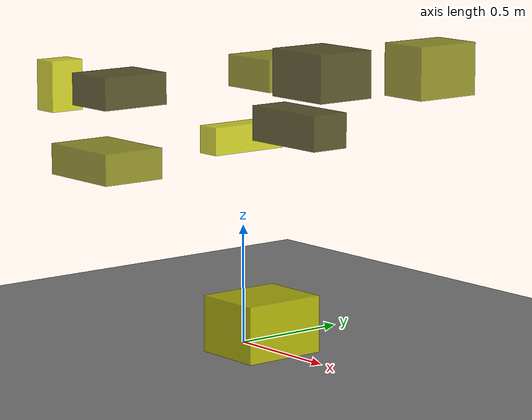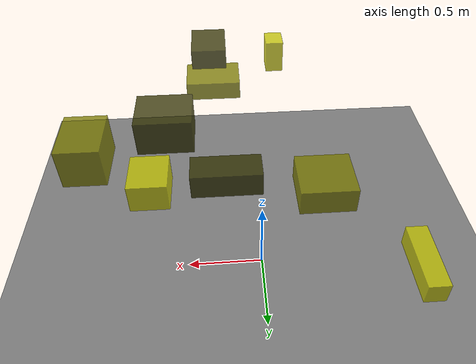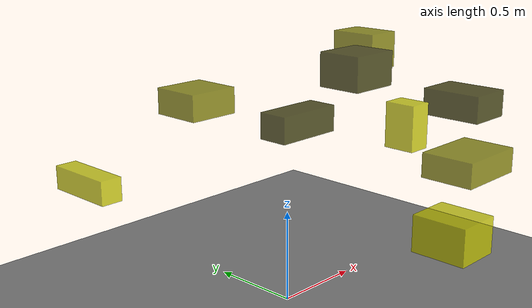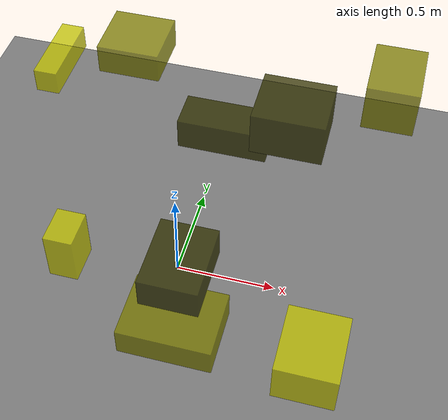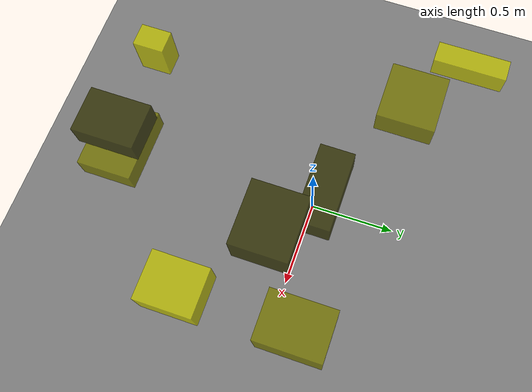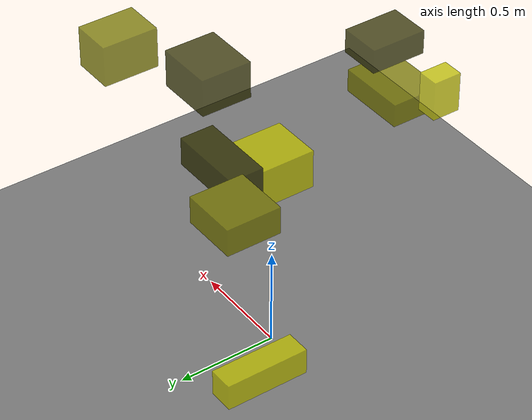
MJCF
<?xml version="1.0"?>
<mujoco model="obstacle_scene">
  <compiler angle="radian" coordinate="local"/>
  <option timestep="0.001" gravity="0 0 -9.81"/>

  <asset>
    <material name="obstacle_mat" rgba="0.8 0.8 0.0 0.8"/>
    <material name="ground_mat" rgba="0.5 0.5 0.5 1"/>
  </asset>

  <worldbody>
    <!-- Ground plane -->
    <geom name="ground" type="plane" size="3 3 0.1" material="ground_mat"/>

    <!-- Obstacles -->
    <body name="obstacle_0" pos="0.287637 -0.838330 1.178793">
      <geom name="obs_0" type="box" size="0.107835 0.143576 0.061970" rgba="0.2 0.2 0.0 0.8"/>
    </body>
    <body name="obstacle_1" pos="0.890894 0.218328 1.229496">
      <geom name="obs_1" type="box" size="0.105531 0.141593 0.103900" rgba="0.5 0.5 0.0 0.8"/>
    </body>
    <body name="obstacle_2" pos="-0.134398 -0.823222 1.147579">
      <geom name="obs_2" type="box" size="0.053355 0.071133 0.100381" rgba="0.8 0.8 0.0 0.8"/>
    </body>
    <body name="obstacle_3" pos="0.521321 -0.020375 1.193054">
      <geom name="obs_3" type="box" size="0.147732 0.129818 0.095751" rgba="0.2 0.2 0.0 0.8"/>
    </body>
    <body name="obstacle_4" pos="-0.274180 0.383634 1.085644">
      <geom name="obs_4" type="box" size="0.139684 0.135185 0.068737" rgba="0.5 0.5 0.0 0.8"/>
    </body>
    <body name="obstacle_5" pos="-0.792777 0.624280 0.711174">
      <geom name="obs_5" type="box" size="0.058660 0.194409 0.062421" rgba="0.8 0.8 0.0 0.8"/>
    </body>
    <body name="obstacle_6" pos="0.211358 0.122389 0.927793">
      <geom name="obs_6" type="box" size="0.196929 0.085959 0.073015" rgba="0.2 0.2 0.0 0.8"/>
    </body>
    <body name="obstacle_7" pos="0.272876 -0.890947 0.901338">
      <geom name="obs_7" type="box" size="0.178509 0.132195 0.060156" rgba="0.5 0.5 0.0 0.8"/>
    </body>
    <body name="obstacle_8" pos="0.769248 -0.527370 0.297695">
      <geom name="obs_8" type="box" size="0.141901 0.168106 0.110127" rgba="0.8 0.8 0.0 0.8"/>
    </body>
  </worldbody>
</mujoco>
